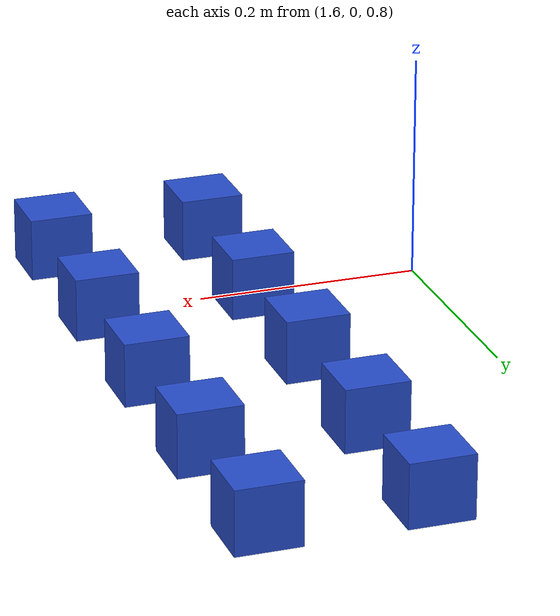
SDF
<sdf version="1.4">
 <world name="default">
  <include><uri>model://ground_plane</uri></include>
  <include><uri>model://sun</uri></include>
  <include><uri>model://demo_cube</uri><pose>1.7 -0.0 0.75 0 0 0</pose></include>
  <include><uri>model://demo_cube</uri><pose>1.7 0.15 0.75 0 0 0</pose></include>
  <include><uri>model://demo_cube</uri><pose>1.7 -0.15 0.75 0 0 0</pose></include>
  <include><uri>model://demo_cube</uri><pose>1.85 -0.15 0.75 0 0 0</pose></include>
  <include><uri>model://demo_cube</uri><pose>1.85 0.0 0.75 0 0 0</pose></include>
  <include><uri>model://demo_cube</uri><pose>1.85 0.15 0.75 0 0 0</pose></include>
  <include><uri>model://demo_cube</uri><pose>1.85 -0.30 0.75 0 0 0</pose></include>
  <include><uri>model://demo_cube</uri><pose>1.85 0.30 0.75 0 0 0</pose></include>
  <include><uri>model://demo_cube</uri><pose>1.7 0.30 0.75 0 0 0</pose></include>
  <include><uri>model://demo_cube</uri><pose>1.7 -0.30 0.75 0 0 0</pose></include>
 </world>
</sdf>

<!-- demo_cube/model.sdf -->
<sdf version='1.6'>
  <model name="demo_cube">
      <static>0</static>
      <link name='link'>
        <inertial>
          <mass>0.25</mass>
          <inertia>
            <ixx>0.001</ixx>
            <ixy>0.000000</ixy>
            <ixz>0.000000</ixz>
            <iyy>0.001</iyy>
            <iyz>0.000000</iyz>
            <izz>0.001</izz>
          </inertia>
        </inertial>
        <collision name='collision'>
          <geometry>
            <box>
              <size>0.060 0.060 0.060</size>
            </box>
          </geometry>
          <surface>
            <friction>
              <ode>
                <mu>30.0</mu>
                <mu2>30.0</mu2>
              </ode>
            </friction>
            <contact>
              <ode>
                <kp>1000000.0</kp>
                <kd>100.0</kd>
                <max_vel>1.0</max_vel>
                <min_depth>0.002</min_depth>
              </ode>
            </contact>
          </surface>
        </collision>
        <visual name='visual'>
          <geometry>
            <box>
              <size>0.060 0.060 0.060</size>
            </box>
          </geometry>
          <material>
            <script>
              <uri>file://media/materials/scripts/gazebo.material</uri>
              <name>Gazebo/Blue</name>
            </script>
          </material>
        </visual>
        <velocity_decay>
          <linear>0.000000</linear>
          <angular>0.000000</angular>
        </velocity_decay>
        <self_collide>0</self_collide>
        <kinematic>0</kinematic>
        <gravity>1</gravity>
      </link>
  </model>
</sdf>
